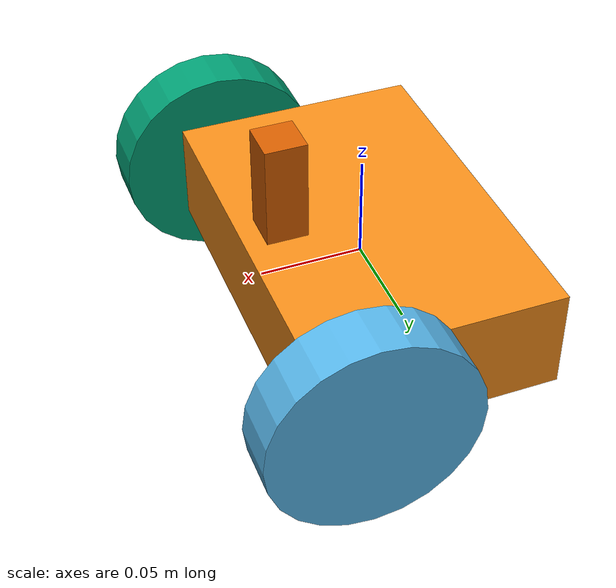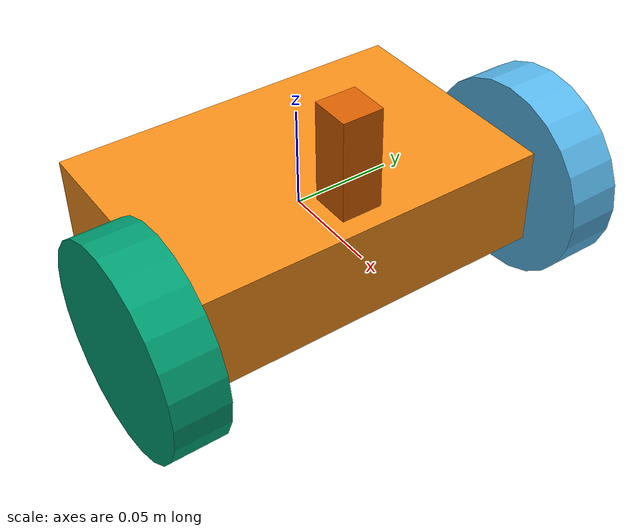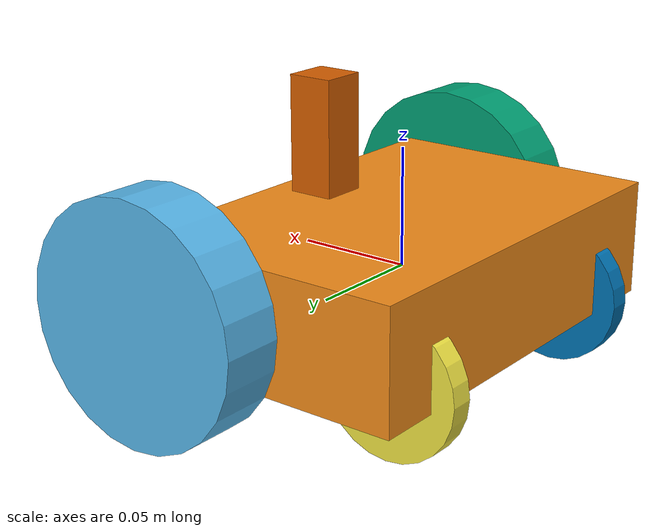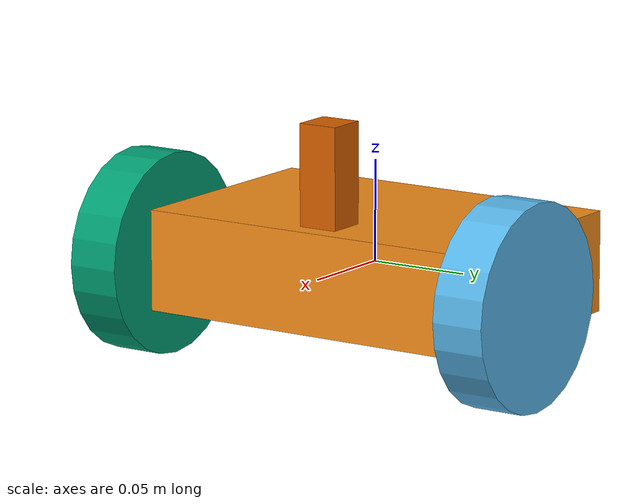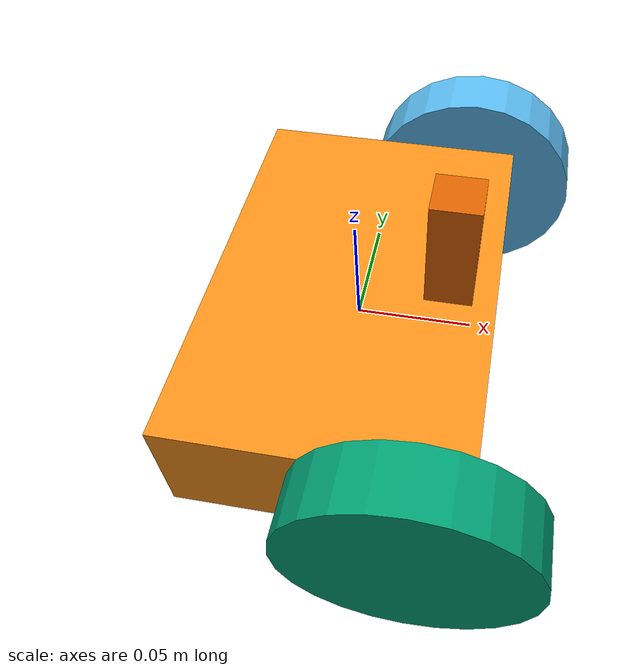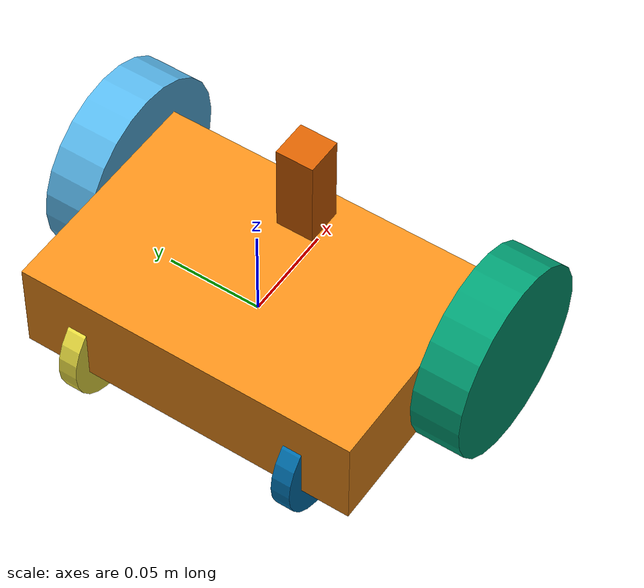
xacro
<?xml version='1.0'?>

<robot name="myrobot" xmlns:xacro="http://www.ros.org/wiki/xacro">

  <xacro:include filename="$(find slammer)/urdf/slammer.gazebo" />
  <xacro:include filename="$(find slammer)/urdf/materials.xacro" />
  <xacro:include filename="$(find slammer)/urdf/macros.xacro" />

  <xacro:property name="HPI" value="1.5707"/>

  <link name='chassis'>
    <pose>0 0 0 0 0 0</pose>

    <inertial>
      <mass value="1"/>
      <origin xyz="0.0 0 0.05" rpy=" 0 0 0"/>
      <box_inertia m="1" x="0.12" y="0.181" z ="0.05"/>
      <!--inertia
          ixx="0.5" ixy="0" ixz="0"
          iyy="1.0" iyz="0"
          izz="0.1"
      /-->

    </inertial>

    <collision name='collision'>
      <geometry>
        <box size=".12 .181 .05"/>
      </geometry>
    </collision>

    <visual name='chassis_visual'>
      <origin xyz="0 0 0" rpy=" 0 0 0"/>
      <geometry>
        <box size=".12 .181 .05"/>
      </geometry>
    </visual>

  </link>

  <link name="left_wheel">
    <collision name="collision">
      <origin xyz="0 0 0" rpy="0 ${HPI} ${HPI}"/>
      <geometry>
        <cylinder radius="0.05" length="0.026"/>
      </geometry>
    </collision>
    <visual name="left_wheel_visual">
      <origin xyz="0 0 0" rpy="0 ${HPI} ${HPI}"/>
      <geometry>
        <cylinder radius="0.05" length="0.026"/>
      </geometry>
    </visual>
    <inertial>
      <origin xyz="0 0 0" rpy="0 ${HPI} ${HPI}"/>
      <mass value="0.03"/>
      <cylinder_inertia m="0.03" r="0.05" h="0.026"/>
      <!--inertia
        ixx="1.0" ixy="0.0" ixz="0.0"
        iyy="1.0" iyz="0.0"
        izz="1.0"/-->
    </inertial>
  </link>

  <link name="right_wheel">
    <collision name="collision">
      <origin xyz="0 0 0" rpy="0 ${HPI} ${HPI}"/>
      <geometry>
        <cylinder radius="0.05" length="0.026"/>
      </geometry>
    </collision>
    <visual name="right_wheel_visual">
      <origin xyz="0 0 0" rpy="0 ${HPI} ${HPI}"/>
      <geometry>
        <cylinder radius="0.05" length="0.026"/>
      </geometry>
    </visual>
    <inertial>
      <origin xyz="0 0 0" rpy="0 ${HPI} ${HPI}"/>
      <mass value="0.03"/>
      <cylinder_inertia m="0.03" r="0.05" h="0.026"/>
      <!--inertia
        ixx="1.0" ixy="0.0" ixz="0.0"
        iyy="1.0" iyz="0.0"
        izz="1.0"/-->
    </inertial>
  </link>

  <joint type="continuous" name="left_wheel_joint">
    <origin xyz="0.04 0.1035 0" rpy="0 0 0"/>
    <child link="left_wheel"/>
    <parent link="chassis"/>
    <axis xyz="0 1 0" rpy="0 0 0"/>
    <limit effort="100" velocity="21"/>
    <joint_properties damping="1.0" friction="1.0"/>
  </joint>

  <joint type="continuous" name="right_wheel_joint">
    <origin xyz="0.04 -0.1035 0" rpy="0 0 0"/>
    <child link="right_wheel"/>
    <parent link="chassis"/>
    <axis xyz="0 1 0" rpy="0 0 0"/>
    <limit effort="100" velocity="21"/>
    <joint_properties damping="1.0" friction="1.0"/>
  </joint>

  <transmission name="transmission_left_wheel">
      <type>transmission_interface/SimpleTransmission</type>
      <joint name="left_wheel_joint">
          <hardwareInterface>hardware_interface/VelocityJointInterface</hardwareInterface>
      </joint>
      <actuator name="motor_left_wheel">
          <hardwareInterface>hardware_interface/VelocityJointInterface</hardwareInterface>
          <mechanicalReduction>1</mechanicalReduction>
      </actuator>
  </transmission>

  <transmission name="transmission_right_wheel">
      <type>transmission_interface/SimpleTransmission</type>
      <joint name="right_wheel_joint">
          <hardwareInterface>hardware_interface/VelocityJointInterface</hardwareInterface>
      </joint>
      <actuator name="motor_right_wheel">
          <hardwareInterface>hardware_interface/VelocityJointInterface</hardwareInterface>
          <mechanicalReduction>1</mechanicalReduction>
      </actuator>
  </transmission>

  <link name="rear_left_wheel">
        <collision name="collision">
      <origin xyz="0 0 0" rpy="0 ${HPI} ${HPI}"/>
      <geometry>
        <cylinder radius="0.03" length="0.01"/>
      </geometry>
    </collision>
    <visual name="left_wheel_visual">
      <origin xyz="0 0 0" rpy="0 ${HPI} ${HPI}"/>
      <geometry>
        <cylinder radius="0.03" length="0.01"/>
      </geometry>
    </visual>
    <inertial>
      <origin xyz="0 0 0" rpy="0 ${HPI} ${HPI}"/>
      <mass value="0.03"/>
      <cylinder_inertia m="0.03" r="0.03" h="0.01"/>
    </inertial>
  </link>

  <link name="rear_right_wheel">
    <collision name="collision">
      <origin xyz="0 0 0" rpy="0 ${HPI} ${HPI}"/>
      <geometry>
        <cylinder radius="0.03" length="0.01"/>
      </geometry>
    </collision>
    <visual name="right_wheel_visual">
      <origin xyz="0 0 0" rpy="0 ${HPI} ${HPI}"/>
      <geometry>
        <cylinder radius="0.03" length="0.01"/>
      </geometry>
    </visual>
    <inertial>
      <origin xyz="0 0 0" rpy="0 ${HPI} ${HPI}"/>
      <mass value="0.03"/>
      <cylinder_inertia m="0.03" r="0.03" h="0.01"/>

    </inertial>
  </link>

  <joint type="continuous" name="rear_left_wheel_joint">
    <origin xyz="-0.04 0.06 -0.02" rpy="0 0 0"/>
    <child link="rear_left_wheel"/>
    <parent link="chassis"/>
    <axis xyz="0 1 0" rpy="0 0 0"/>
    <limit effort="100" velocity="21"/>
    <joint_properties damping="1.0" friction="1.0"/>
  </joint>

  <joint type="continuous" name="rear_right_wheel_joint">
    <origin xyz="-0.04 -0.06 -0.02" rpy="0 0 0"/>
    <child link="rear_right_wheel"/>
    <parent link="chassis"/>
    <axis xyz="0 1 0" rpy="0 0 0"/>
    <limit effort="100" velocity="21"/>
    <joint_properties damping="1.0" friction="1.0"/>
  </joint>

  <joint name="laser_joint" type="fixed">
    <axis xyz="0.0 1 0.0" />
    <origin xyz="0.04 0 0.075" rpy="0 0 0"/>
    <parent link="chassis"/>
    <child link="laser_link"/>
  </joint>

  <link name="laser_link">
    <collision>
      <origin xyz="0.0 0 -0.025" rpy="0 0 0"/>
      <geometry>
        <box size="0.02 0.02 0.05"/>
      </geometry>
    </collision>

    <visual>
      <origin xyz="0.0 0 -0.025" rpy="0 0 0"/>
      <geometry>
        <box size = "0.02 0.02 0.05"/>
      </geometry>
    </visual>

    <inertial>
      <mass value="0.20" />
      <origin xyz="0.0 0 -0.025" rpy="0 0 0"/>
      <!--inertia ixx="1e-6" ixy="0" ixz="0" iyy="1e-6" iyz="0" izz="1e-6" /-->
      <box_inertia m="0.2" x="0.02" y="0.02" z="0.05"/>
    </inertial>
  </link>

  <joint name="imu_joint" type="fixed">
    <axis xyz="0 0 0"/>
    <origin xyz="0 0 0"/>
    <parent link="chassis"/>
    <child link="imu_link"/>
  </joint>

  <link name="imu_link">
    <inertial>
      <mass value="0.001"/>
      <origin rpy="0 0 0" xyz="0 0 0"/>
      <box_inertia m="0.001" x="0.001" y="0.001" z="0.001"/>
    </inertial>
    <visual>
      <origin rpy="0 0 0" xyz="0 0 0"/>
      <geometry>
        <box size="0.001 0.001 0.001"/>
      </geometry>
    </visual>
    <collision>
      <origin rpy="0 0 0" xyz="0 0 0"/>
      <geometry>
        <box size=".001 .001 .001"/>
      </geometry>
    </collision>
  </link>

</robot>

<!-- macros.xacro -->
<robot>
  <macro name="cylinder_inertia" params="m r h">
    <inertia  ixx="${m*(3*r*r+h*h)/12}" ixy = "0" ixz = "0"
      iyy="${m*(3*r*r+h*h)/12}" iyz = "0"
      izz="${m*r*r/2}"
    />
  </macro>

  <macro name="box_inertia" params="m x y z">
    <inertia  ixx="${m*(y*y+z*z)/12}" ixy = "0" ixz = "0"
      iyy="${m*(x*x+z*z)/12}" iyz = "0"
      izz="${m*(x*x+y*y)/12}"
    />
  </macro>

</robot>
